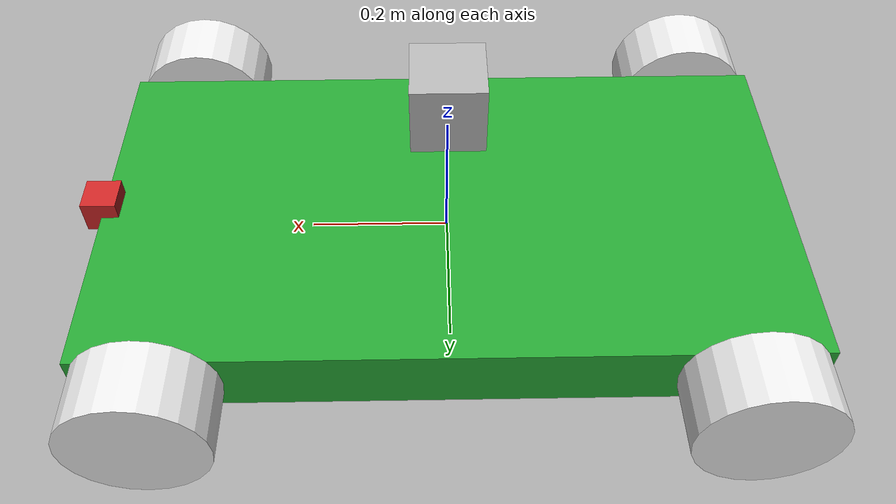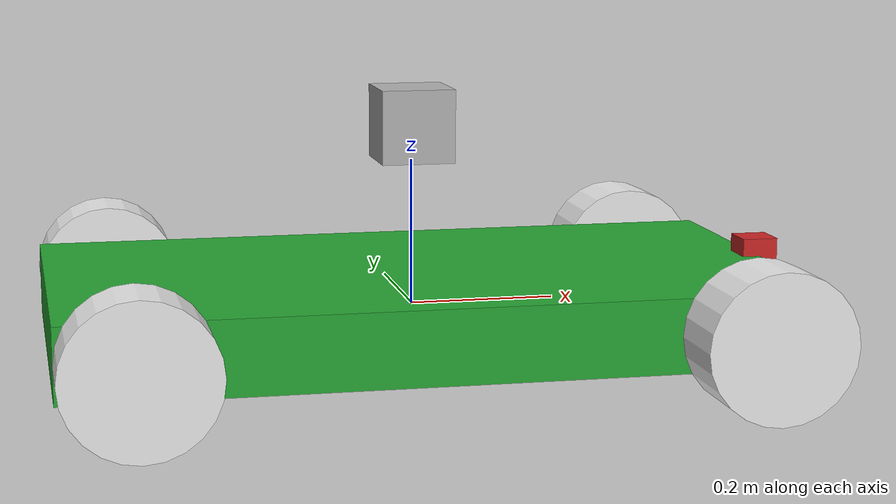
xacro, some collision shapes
<!--fichier faisent appel à notre model de robot et les capteurs-->
<?xml version="1.0"?>
<robot xmlns:xacro="http://www.ros.org/wiki/xacro" name="my_robot">

<xacro:include filename= "$(find my_robot_description)/urdf/02-description.xacro" />
<xacro:include filename= "$(find my_robot_gazebo)/urdf/sensors.xacro" />

<gazebo>
    <plugin name="gazebo_ros_control" filename="libgazebo_ros_control.so">
        <robotNamespace>/</robotNamespace>
        <legacyModeNS>true</legacyModeNS>
    </plugin>
</gazebo>

<gazebo reference ="base_link">
    <material>Gazebo/Green</material>
</gazebo>

<xacro:macro name="wheel_trans_macro" params="pos">
        <transmission name="${pos}_wheel_trans">
            <type>transmission_interface/SimpleTransmission</type>
            <actuator name="${pos}_wheel_motor">
                <mechanicalReduction>1</mechanicalReduction>
            </actuator>
            <joint name="${pos}_wheel_joint">
                <hardwareInterface>hardware_interface/VelocityJointInterface</hardwareInterface>
            </joint>
        </transmission>

        <gazebo reference="${pos}_wheel">
            <mu1 value="2.0"/>
            <mu2 value="1.0"/>
            <kp value="10000000.0" />
            <kd value="1.0" />
            <material>Gazebo/White</material>
        </gazebo>
 </xacro:macro>

 <xacro:wheel_trans_macro pos="fl" />
 <xacro:wheel_trans_macro pos="fr" />
 <xacro:wheel_trans_macro pos="rl" />
 <xacro:wheel_trans_macro pos="rr" />
 </robot>

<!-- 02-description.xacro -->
<robot xmlns:xacro="http://www.ros.org/wiki/xacro" name="my_robot">

    <xacro:property name="body_length" value="1.0" />
    <xacro:property name="body_width" value="0.55" />
    <xacro:property name="body_height" value="0.1" />
    <xacro:property name="body_mass" value="10" />
    <xacro:property name="wheel_width" value="0.1" />
    <xacro:property name="wheel_radius" value="0.1" />
    <xacro:property name="wheel_mass" value="1" />
    <!--DEFINITION DE MACRO DES ROUE-->
    <xacro:macro name="create_wheel" params="position">

        <link name="${position}_wheel">
                <visual>
                    <xacro:if value="${position=='fl'}">
                        <origin xyz=" 0.0 ${wheel_width/2} 0.0" rpy="${pi/2} 0.0 0.0" />
                    </xacro:if>

                    <xacro:if value="${position=='fr'}">
                        <origin xyz=" 0.0 ${-wheel_width/2} 0.0" rpy="${pi/2} 0.0 0.0" />
                    </xacro:if>

                    <xacro:if value="${position=='rl'}">
                        <origin xyz=" 0.0 ${wheel_width/2} 0.0" rpy="${pi/2} 0.0 0.0" />
                    </xacro:if>

                    <xacro:if value="${position=='rr'}">
                        <origin xyz=" 0.0 ${-wheel_width/2} 0.0" rpy="${pi/2} 0.0 0.0" />
                    </xacro:if>

                    <geometry>
                        <cylinder radius="${wheel_radius}" length="${wheel_width}"/>
                    </geometry>
                </visual>
                <xacro:cylinder_inertial mass="${wheel_mass}" r="${wheel_radius}" h="${wheel_width}" />
                <collision>
                    <xacro:if value="${position=='fl'}">
                        <origin xyz=" 0.0 ${wheel_width/2} 0.0" rpy="${pi/2} 0.0 0.0" />
                    </xacro:if>

                    <xacro:if value="${position=='fr'}">
                        <origin xyz=" 0.0 ${-wheel_width/2} 0.0" rpy="${pi/2} 0.0 0.0" />
                    </xacro:if>

                    <xacro:if value="${position=='rl'}">
                        <origin xyz=" 0.0 ${wheel_width/2} 0.0" rpy="${pi/2} 0.0 0.0" />
                    </xacro:if>

                    <xacro:if value="${position=='rr'}">
                        <origin xyz=" 0.0 ${-wheel_width/2} 0.0" rpy="${pi/2} 0.0 0.0" />
                    </xacro:if>

                    <geometry>
                        <cylinder radius="${wheel_radius}" length="${wheel_width}"/>
                    </geometry>
                </collision>
            </link>

            <joint name="${position}_wheel_joint" type="continuous">
                <xacro:if value="${position=='fl'}">
                    <origin xyz="${body_length/2-0.1} ${body_width/2} 0.0" />
                </xacro:if>

                <xacro:if value="${position=='fr'}">
                    <origin xyz="${body_length/2-0.1} ${-body_width/2} 0.0" />
                </xacro:if>

                <xacro:if value="${position=='rl'}">
                    <origin xyz="${-body_length/2+0.1} ${body_width/2} 0.0" />
                </xacro:if>

                <xacro:if value="${position=='rr'}">
                    <origin xyz="${-body_length/2+0.1} ${-body_width/2} 0.0" />
                </xacro:if>
                <parent link="base_link"/>
                <child link="${position}_wheel"/>
                <axis xyz="0.0 1.0 0.0" />
            </joint>
    </xacro:macro>

    <!-- MACROS -->
    <xacro:macro name="box_inertial" params="mass l w h">
        <inertial>
                <mass value="${mass}" />
                <inertia ixx="${mass/3*(w*w + h*h)}" ixy="${mass/4*l*w}" ixz="${mass/4*l*h}"
                     iyy="${mass/3*(l*l + h*h)}" iyz="${mass/4*w*h}"
                     izz="${mass/3*(l*l + w*w)}" />
        </inertial>
    </xacro:macro>
    <xacro:macro name="cylinder_inertial" params="mass r h">
        <inertial>
                <mass value="${mass}" />
                <inertia ixx="${mass/12*(3*r*r + h*h)}" ixy="0.0" ixz="0.0"
                     iyy="${mass/12*(3*r*r + h*h)}" iyz="0.0"
                     izz="${mass/2*(r*r)}" />
        </inertial>
    </xacro:macro>
    <xacro:macro name="spherus_inertial" params="mass r">
        <inertial>
                <mass value="${mass}" />
                <inertia ixx="${mass/5*2*(r*r)}" ixy="0.0" ixz="0.0"
                     iyy="${mass/5*2*(r*r)}" iyz="0.0"
                     izz="${mass/5*2*(r*r)}" />
        </inertial>
    </xacro:macro>

    <!--SECTION PRINCIPALE-->
    <link name="base_link">
        <visual>
            <geometry>
                <box size="${body_length} ${body_width} ${body_height}" />
            </geometry>
        </visual>
        <collision>
            <geometry>
                <box size="${body_length} ${body_width} ${body_height}" />
            </geometry>
        </collision>
    </link>
    <!--intertial link indispensable car base_link ne peut pas porter de masse et d'inertie-->
    <link name= 'inertial_link'>
         <xacro:box_inertial mass="${body_mass}" l="${body_length}" w="${body_width}" h="${body_height}"/>
    </link>
    <joint name="inertial_joint" type="fixed">
        <parent link="base_link" />
        <child link="inertial_link"/>
    </joint>

    <xacro:create_wheel position="fl"/>
    <xacro:create_wheel position="fr"/>
    <xacro:create_wheel position="rl"/>
    <xacro:create_wheel position="rr"/>

</robot>

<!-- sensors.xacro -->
<!--fichier contenent les pluging les differents capteurs disponible sous notre robot-->
<?xml version="1.0"?>
<robot xmlns:xacro="http://www.ros.org/wiki/xacro" name="my_robot">

  <xacro:property name="camera_link" value="0.05" />

  <joint name="camera_joint" type="fixed">
    <axis xyz="0 1 0" />
    <origin xyz="${body_length/2} 0 ${body_height/2}" rpy="0 0 0"/>
    <parent link="base_link"/>
    <child link="camera_link"/>
  </joint>

  <!-- Camera -->
  <link name="camera_link">
    <collision>
      <origin xyz="0 0 0" rpy="0 0 0"/>
      <geometry>
    <box size="${camera_link} ${camera_link} ${camera_link}"/>
      </geometry>
    </collision>

    <visual>
      <origin xyz="0 0 0" rpy="0 0 0"/>
      <geometry>
    <box size="${camera_link} ${camera_link} ${camera_link}"/>
      </geometry>
      <material name="red"/>
    </visual>

    <inertial>
      <mass value="1e-5" />
      <origin xyz="0 0 0" rpy="0 0 0"/>
      <inertia ixx="1e-6" ixy="0" ixz="0" iyy="1e-6" iyz="0" izz="1e-6" />
    </inertial>
  </link>

  <!-- camera -->
  <gazebo reference="camera_link">
    <sensor type="camera" name="camera">
      <update_rate>30.0</update_rate>
      <camera name="head">
        <horizontal_fov>1.3962634</horizontal_fov>
        <image>
          <width>1920</width>
          <height>1080</height>
          <format>R8G8B8</format>
        </image>
        <clip>
          <near>0.02</near>
          <far>300</far>
        </clip>
        <noise>
          <type>gaussian</type>
          <!-- Noise is sampled independently per pixel on each frame.
               That pixel's noise value is added to each of its color
               channels, which at that point lie in the range [0,1]. -->
          <mean>0.0</mean>
          <stddev>0.007</stddev>
        </noise>
      </camera>
      <plugin name="camera_controller" filename="libgazebo_ros_camera.so">
        <alwaysOn>true</alwaysOn>
        <updateRate>0.0</updateRate>
        <cameraName>/camera</cameraName>
        <imageTopicName>image_raw</imageTopicName>
        <cameraInfoTopicName>camera_info</cameraInfoTopicName>
        <frameName>camera_link</frameName>
        <hackBaseline>0.07</hackBaseline>
        <distortionK1>0.0</distortionK1>
        <distortionK2>0.0</distortionK2>
        <distortionK3>0.0</distortionK3>
        <distortionT1>0.0</distortionT1>
        <distortionT2>0.0</distortionT2>
      </plugin>
    </sensor>
  </gazebo>

  <joint name="hokuyo_joint" type="fixed">
    <axis xyz="0 1 0" />
    <origin xyz="0 0 ${body_height/2+0.2}" rpy="0 0 0"/>
    <parent link="base_link"/>
    <child link="hokuyo_link"/>
  </joint>

  <!-- Hokuyo Laser -->
  <link name="hokuyo_link">
    <collision>
      <origin xyz="0 0 0" rpy="0 0 0"/>
      <geometry>
    <box size="0.1 0.1 0.1"/>
      </geometry>
    </collision>

    <visual>
      <origin xyz="0 0 0" rpy="0 0 0"/>
      <geometry>
        <mesh filename="package://my_robot_gazebo/urdf/meshes/hokuyo.dae"/>
      </geometry>
    </visual>
    <inertial>
      <mass value="1e-5" />
      <origin xyz="0 0 0" rpy="0 0 0"/>
      <inertia ixx="1e-6" ixy="0" ixz="0" iyy="1e-6" iyz="0" izz="1e-6" />
    </inertial>
  </link>

  <!-- hokuyo -->
  <gazebo reference="hokuyo_link">
    <sensor type="gpu_ray" name="head_hokuyo_sensor">
      <pose>0 0 0 0 0 0</pose>
      <visualize>false</visualize>
      <update_rate>10</update_rate>
      <ray>
        <scan>
          <horizontal>
            <samples>360</samples>
            <resolution>1</resolution>
            <min_angle>-1.570796</min_angle>
            <max_angle>1.570796</max_angle>
          </horizontal>
        </scan>
        <range>
          <min>0.10</min>
          <max>15</max>
          <resolution>0.01</resolution>
        </range>
        <noise>
          <type>gaussian</type>
          <mean>0.0</mean>
          <stddev>0.01</stddev>
        </noise>
      </ray>
      <plugin name="gazebo_ros_head_hokuyo_controller" filename="libgazebo_ros_gpu_laser.so">
        <topicName>/laser/scan</topicName>
        <frameName>hokuyo_link</frameName>
      </plugin>
    </sensor>
  </gazebo>

 </robot>
